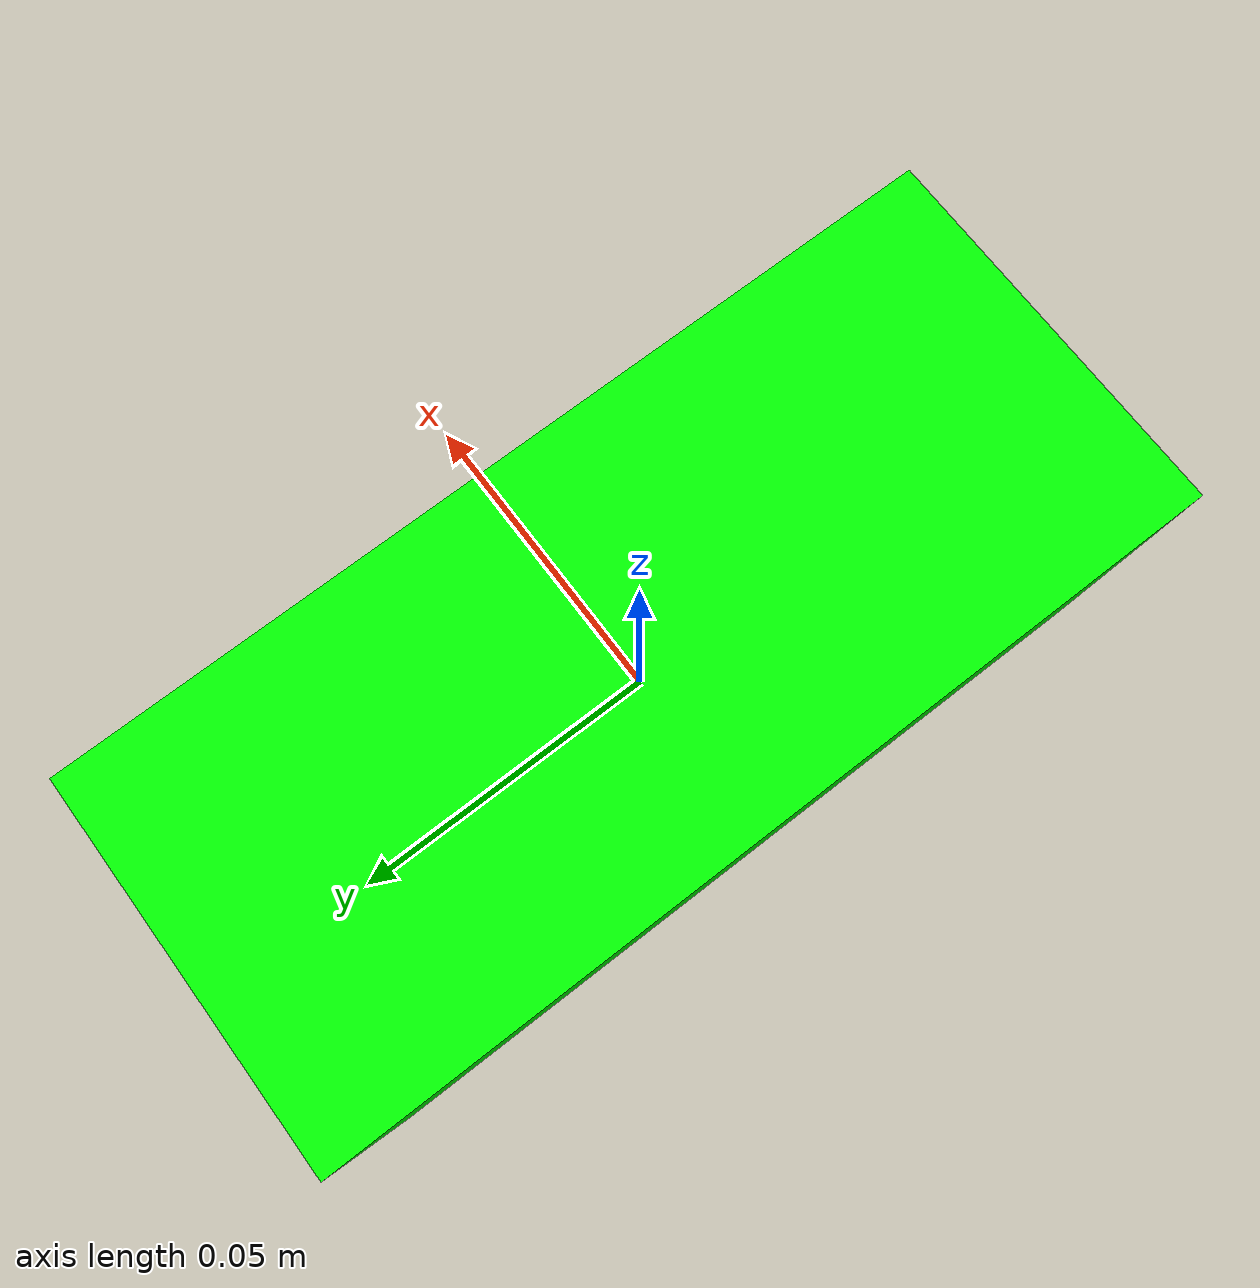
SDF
<?xml version="1.0"?>
<sdf version="1.7">
  <model name="block2">
    <pose> 0 0 0 0 0 0 </pose>
    <link name="block2_link">
      <inertial>
        <mass>0.2</mass>
        <inertia>
          <ixx>0.026734195830493954</ixx>
          <ixy>0.0</ixy>
          <ixz>0.0</ixz>
          <iyy>0.028155796674108682</iyy>
          <iyz>0.0</iyz>
          <izz>0.026734195830493954</izz>
        </inertia>
      </inertial>
      <collision name="collision">
        <geometry>
          <box>
            <size> 0.06 0.14 0.06 </size>
          </box>
        </geometry>
        <surface>
            <friction>
                <ode>
                    <mu>1.0</mu>
                    <mu2>1.0</mu2>
                </ode>
            </friction>
        </surface>
      </collision>
      <visual name="visual">
        <geometry>
          <box>
            <size> 0.06 0.14 0.06 </size>
          </box>
        </geometry>
        <material>
          <diffuse>0 1 0 1</diffuse>
        </material>
      </visual>
    </link>
  </model>
</sdf>
